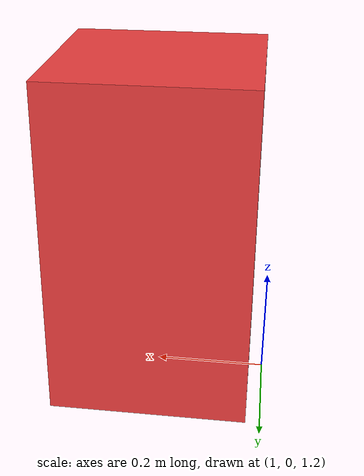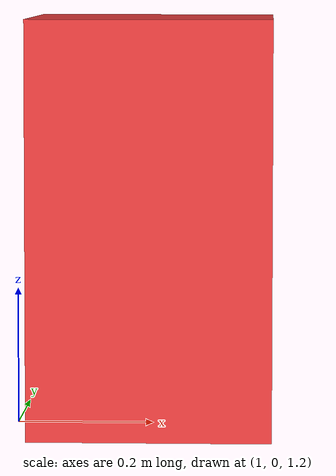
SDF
<?xml version="1.0"?>
<sdf version="1.9">
  <model name="arc_marker_symmetry">
    <static>true</static>
    <pose>1.2 0.0 1.5 0 0 0</pose>
    <link name="marker_link">
      <visual name="marker_visual">
        <geometry>
          <box>
            <size>0.35 0.35 0.6</size>
          </box>
        </geometry>
        <material>
          <ambient>0.95 0.25 0.25 1.0</ambient>
          <diffuse>0.95 0.25 0.25 1.0</diffuse>
        </material>
      </visual>
      <collision name="marker_collision">
        <geometry>
          <box>
            <size>0.35 0.35 0.6</size>
          </box>
        </geometry>
      </collision>
    </link>
  </model>
</sdf>
